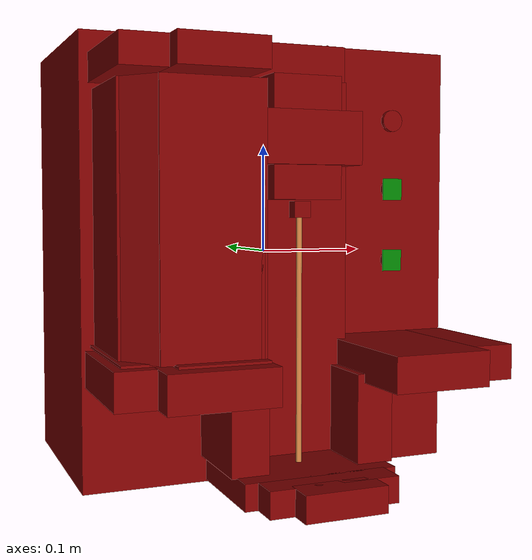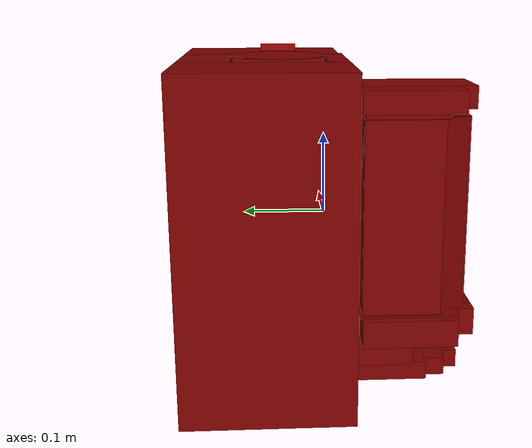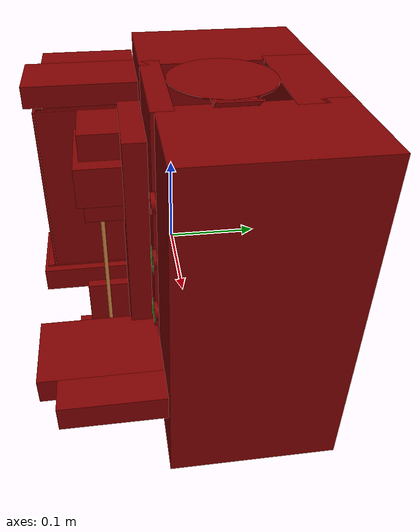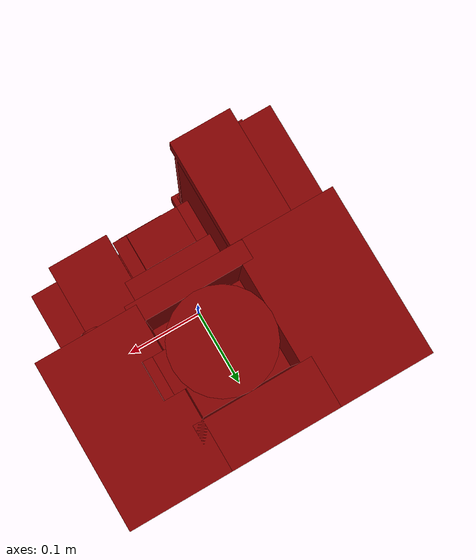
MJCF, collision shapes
<?xml version='1.0' encoding='UTF-8'?>
<mujoco model="model">
  <compiler angle="radian"/>
  <asset>
    <mesh file="visuals/Body001.obj" name="Body001_vis"/>
    <mesh file="visuals/Body001_Clear.obj" name="Body001_Clear_vis"/>
    <mesh file="visuals/Button001.obj" name="Button001_vis"/>
    <mesh file="visuals/Button002.obj" name="Button002_vis"/>
    <mesh file="visuals/Button003.obj" name="Button003_vis"/>
    <mesh file="visuals/Lid001.obj" name="Lid001_vis"/>
    <mesh file="visuals/Lid002.obj" name="Lid002_vis"/>
    <texture file="visuals/T_BC001.png" name="Body001_material" type="2d"/>
    <material name="Body001_material" rgba="1 1 1 1.0" texture="Body001_material" shininess="1" specular="1"/>
    <texture file="visuals/T_BC001.png" name="Body001_Clear_material" type="2d"/>
    <material name="Body001_Clear_material" rgba="1 1 1 0.054901957511901855" texture="Body001_Clear_material" shininess="0.5" specular="0.3103448502657381"/>
    <texture file="visuals/T_BC001.png" name="Lid001_material" type="2d"/>
    <material name="Lid001_material" rgba="1 1 1 1.0" texture="Lid001_material" shininess="1" specular="1"/>
    <texture file="visuals/T_BC001.png" name="Button001_material" type="2d"/>
    <material name="Button001_material" rgba="1 1 1 1.0" texture="Button001_material" shininess="1" specular="1"/>
    <texture file="visuals/T_BC001.png" name="Button002_material" type="2d"/>
    <material name="Button002_material" rgba="1 1 1 1.0" texture="Button002_material" shininess="1" specular="1"/>
    <texture file="visuals/T_BC001.png" name="Button003_material" type="2d"/>
    <material name="Button003_material" rgba="1 1 1 1.0" texture="Button003_material" shininess="1" specular="1"/>
    <texture file="visuals/T_BC001.png" name="Lid002_material" type="2d"/>
    <material name="Lid002_material" rgba="1 1 1 1.0" texture="Lid002_material" shininess="1" specular="1"/>
  </asset>
  <default>
    <default class="visual">
      <geom conaffinity="0" contype="0" group="1" type="mesh"/>
    </default>
    <default class="collision">
      <geom group="0" rgba="0.5 0 0 0.5"/>
    </default>
    <default class="spawn">
      <geom group="0" rgba="1 1 1 0.5" contype="0" conaffinity="0"/>
      <site group="0" rgba="1 1 1 0.5"/>
    </default>
    <default class="region">
      <geom group="1" conaffinity="0" contype="0" rgba="0 1 0 0"/>
    </default>
  </default>
  <worldbody>
    <body>
      <body name="object">
        <geom class="collision" type="box" pos="0.12107712775468826 -0.03348321467638016 -0.00964126642793417" size="0.010198851116001606 0.010198851116001606 0.00022172174067236483" quat="0.7071067094802856 0.70710688829422 0.0 0.0" name="start_button_2" rgba="0.0 0.5 0 0.5"/>
        <geom class="collision" type="box" pos="0.12107712775468826 -0.03348321467638016 0.0590573288500309" size="0.010198851116001606 0.010198851116001606 0.00022172174067236483" quat="0.7071067094802856 0.70710688829422 0.0 0.0" name="start_button_1" rgba="0.0 0.5 0 0.5"/>
        <site type="cylinder" rgba="0.8 0.5 0.25 1" size="0.002499897265806794 0.10969151556491852" pos="0.0004139021039009094 -0.08155938982963562 -0.0758737176656723" name="coffee_liquid"/>
        <site rgba="0 0 0 0" size="0.009999999776482582 0.009999999776482582" pos="-2.2351741790771484e-08 -0.08291999995708466 -0.18611593544483185" name="receptacle_place_site"/>
        <geom mesh="Body001_vis" type="mesh" solimp="0.998 0.998 0.001" solref="0.001 1" density="100" friction="0.95 0.3 0.1" class="visual" material="Body001_material"/>
        <geom class="collision" type="box" pos="0.12029457092285156 0.07537875324487686 -0.007508434820920229" size="0.060457177460193634 0.09922048449516296 0.20035886764526367" quat="1.0 0.0 0.0 0.0"/>
        <geom class="collision" type="box" pos="0.005726244300603867 -0.04299698397517204 -0.025446901097893715" size="0.053413648158311844 0.012728841975331306 0.1813308745622635" quat="1.0 0.0 0.0 0.0"/>
        <geom class="collision" type="box" pos="0.0002868058509193361 -0.08141263574361801 0.10149337351322174" size="0.0486329160630703 0.025171738117933273 0.023127645254135132" quat="1.0 0.0 0.0 0.0"/>
        <geom class="collision" type="box" pos="0.09653265029191971 -0.0949341431260109 -0.09565312415361404" size="0.045368023216724396 0.06947191059589386 0.01577002741396427" quat="1.0 0.0 0.0 0.0"/>
        <geom class="collision" type="box" pos="0.0020698849111795425 -0.076214499771595 -0.1945330798625946" size="0.06997893750667572 0.05075215920805931 0.01157949399203062" quat="1.0 0.0 0.0 0.0"/>
        <geom class="collision" type="box" pos="0.0008118483237922192 -0.08192845433950424 0.04015955701470375" size="0.0076134768314659595 0.005790594965219498 0.007272343151271343" quat="1.0 0.0 0.0 0.0"/>
        <geom class="collision" type="box" pos="-0.05584932491183281 -0.06735557317733765 -0.14354677498340607" size="0.016993002966046333 0.04189331829547882 0.03993882238864899" quat="1.0 0.0 0.0 0.0"/>
        <geom class="collision" type="box" pos="0.06146086007356644 -0.06735557317733765 -0.14354677498340607" size="0.01699301414191723 0.0418933629989624 0.03993886709213257" quat="1.0 0.0 0.0 0.0"/>
        <geom class="collision" type="box" pos="-2.947444772871677e-05 0.0806526467204094 -0.05731666460633278" size="0.16951726377010345 0.08244248479604721 0.15055064857006073" quat="4.331257628109597e-07 0.0 0.0 1.0"/>
        <geom class="collision" type="box" pos="-0.11887158453464508 0.073183074593544 -0.007508434820920229" size="0.06208404526114464 0.10141617059707642 0.20035886764526367" quat="1.0 0.0 0.0 0.0"/>
        <geom class="collision" type="box" pos="0.0008508339524269104 -0.01621164381504059 -0.007508434820920229" size="0.07093788683414459 0.011832824908196926 0.20035886764526367" quat="1.0 0.0 0.0 0.0"/>
        <geom class="collision" type="box" pos="0.0008508339524269104 0.14423009753227234 -0.007508434820920229" size="0.07093788683414459 0.03036913461983204 0.20035886764526367" quat="1.0 0.0 0.0 0.0"/>
        <geom class="collision" type="box" pos="-0.09780696034431458 -0.09920985251665115 -0.09715201705694199" size="0.04656850919127464 0.06605697423219681 0.015917321667075157" quat="1.0 0.0 0.0 0.0"/>
        <geom class="collision" type="box" pos="-0.13211330771446228 -0.08683750033378601 -0.09715201705694199" size="0.04656850919127464 0.05368461832404137 0.015917321667075157" quat="1.0 0.0 0.0 0.0"/>
        <geom class="collision" type="box" pos="0.0002868058509193361 -0.07828032225370407 0.13890305161476135" size="0.03158481419086456 0.022039422765374184 0.01568765752017498" quat="1.0 0.0 0.0 0.0"/>
        <geom class="collision" type="box" pos="0.0002868058509193361 -0.07828032225370407 0.06442836672067642" size="0.03158481419086456 0.022039422765374184 0.01568765752017498" quat="1.0 0.0 0.0 0.0"/>
        <geom class="collision" type="box" pos="0.1614852100610733 -0.08361555635929108 -0.09565312415361404" size="0.019854122772812843 0.05838443711400032 0.01577002741396427" quat="1.0 0.0 0.0 0.0"/>
        <geom class="collision" type="box" pos="0.0024135117419064045 -0.13847100734710693 -0.1945330798625946" size="0.05876042693853378 0.013698773458600044 0.01157949399203062" quat="1.0 0.0 0.0 0.0"/>
        <geom class="collision" type="box" pos="0.0024135117419064045 -0.15859687328338623 -0.1945330798625946" size="0.03685906156897545 0.013698773458600044 0.01157949399203062" quat="1.0 0.0 0.0 0.0"/>
        <body name="Body001_Clear">
          <joint axis="0.0 0.0 1.0" pos="-0.11562211066484451 -0.09324055165052414 0.03270146623253822" limited="true" name="Body001_Clear_joint" range="0.0 0.05" type="slide" damping="1" frictionloss="1" armature=".01" stiffness="0.05"/>
          <geom mesh="Body001_Clear_vis" type="mesh" solimp="0.998 0.998 0.001" solref="0.001 1" density="100" friction="0.95 0.3 0.1" class="visual" material="Body001_Clear_material"/>
          <geom class="collision" type="box" pos="-0.10201727598905563 -0.15067824721336365 0.032239384949207306" size="0.0435255691409111 0.001243031583726406 0.10988636314868927" quat="1.0 0.0 0.0 0.0"/>
          <geom class="collision" type="box" pos="-0.062052171677351 -0.09253707528114319 0.032239384949207306" size="0.00151469511911273 0.05938419699668884 0.10988636314868927" quat="1.0 0.0 0.0 0.0"/>
          <geom class="collision" type="box" pos="-0.11354825645685196 -0.03477991744875908 0.032619573175907135" size="0.05591772124171257 0.0016617337241768837 0.10988636314868927" quat="1.0 0.0 0.0 0.0"/>
          <geom class="collision" type="box" pos="-0.16855427622795105 -0.07681891322135925 0.032239384949207306" size="0.002152479952201247 0.043666038662195206 0.10988636314868927" quat="1.0 0.0 0.0 0.0"/>
          <geom class="collision" type="box" pos="-0.15490704774856567 -0.13374513387680054 0.032239384949207306" size="0.002152479952201247 0.01986122503876686 0.10988636314868927" quat="0.9437446594238281 0.0 0.0 0.33067506551742554"/>
          <geom class="collision" type="box" pos="-0.11344563961029053 -0.03477473556995392 0.032239384949207306" size="0.0549539290368557 0.0016565527766942978 0.10988636314868927" quat="1.0 0.0 0.0 0.0"/>
          <geom class="collision" type="box" pos="-0.15381473302841187 -0.08604062348604202 -0.07782431691884995" size="0.01973472535610199 0.05577203631401062 0.0011555226519703865" quat="1.0 0.0 0.0 0.0"/>
          <geom class="collision" type="box" pos="-0.0962858498096466 -0.09560143947601318 -0.07782431691884995" size="0.03779415041208267 0.06533285230398178 0.0011555226519703865" quat="1.0 0.0 0.0 0.0"/>
          <body name="Lid001">
            <joint axis="0.0 0.0 1.0" pos="-0.11642146110534668 -0.09773202985525131 0.15823259949684143" limited="true" name="Lid001_joint" range="0.0 0.05" type="slide" damping="1" frictionloss="1" armature=".01" stiffness="0.05"/>
            <geom mesh="Lid001_vis" type="mesh" solimp="0.998 0.998 0.001" solref="0.001 1" density="100" friction="0.95 0.3 0.1" class="visual" material="Lid001_material"/>
            <geom class="collision" type="box" pos="-0.15381473302841187 -0.08604062348604202 0.16047435998916626" size="0.01973472535610199 0.05577203631401062 0.012745336629450321" quat="1.0 0.0 0.0 0.0"/>
            <geom class="collision" type="box" pos="-0.0962858498096466 -0.09560143947601318 0.16047435998916626" size="0.03779415041208267 0.06533285230398178 0.012745336629450321" quat="1.0 0.0 0.0 0.0"/>
          </body>
        </body>
        <body name="Button001">
          <joint axis="0.0 1.0 0.0" pos="0.1211571916937828 -0.02952328324317932 0.12493383139371872" limited="true" name="Button001_joint" range="0.0 0.003" type="slide" damping="1" frictionloss="1" armature=".01" stiffness="0.05"/>
          <geom mesh="Button001_vis" type="mesh" solimp="0.998 0.998 0.001" solref="0.001 1" density="100" friction="0.95 0.3 0.1" class="visual" material="Button001_material"/>
          <geom class="collision" type="cylinder" pos="0.12107712775468826 -0.03130362927913666 0.12493272870779037" size="0.010198851116001606 0.0023971034679561853" quat="0.7071067094802856 0.70710688829422 0.0 0.0"/>
        </body>
        <body name="Button002">
          <joint axis="0.0 1.0 0.0" pos="0.1211571916937828 -0.02952328510582447 0.059010542929172516" limited="true" name="Button002_joint" range="0.0 0.003" type="slide" damping="1" frictionloss="1" armature=".01" stiffness="0.05"/>
          <geom mesh="Button002_vis" type="mesh" solimp="0.998 0.998 0.001" solref="0.001 1" density="100" friction="0.95 0.3 0.1" class="visual" material="Button002_material"/>
          <geom class="collision" type="cylinder" pos="0.12107712775468826 -0.030893800780177116 0.0590573288500309" size="0.010198851116001606 0.0019872740376740694" quat="0.7071067094802856 0.70710688829422 0.0 0.0"/>
        </body>
        <body name="Button003">
          <joint axis="0.0 1.0 0.0" pos="0.1211571916937828 -0.02952328510582447 -0.009814940392971039" limited="true" name="Button003_joint" range="0.0 0.003" type="slide" damping="1" frictionloss="1" armature=".01" stiffness="0.05"/>
          <geom mesh="Button003_vis" type="mesh" solimp="0.998 0.998 0.001" solref="0.001 1" density="100" friction="0.95 0.3 0.1" class="visual" material="Button003_material"/>
          <geom class="collision" type="cylinder" pos="0.12107712775468826 -0.030893800780177116 -0.00964126642793417" size="0.010198851116001606 0.0019872740376740694" quat="0.7071067094802856 0.70710688829422 0.0 0.0"/>
        </body>
        <body name="Lid002">
          <joint axis="0.0 -1.0 0.0" pos="-0.05729377642273903 0.054574884474277496 0.19490844011306763" limited="true" name="Lid002_joint" range="0.0 1.5707963267948966" type="hinge" damping="1" frictionloss="1" armature=".01" stiffness="0.05"/>
          <geom mesh="Lid002_vis" type="mesh" solimp="0.998 0.998 0.001" solref="0.001 1" density="100" friction="0.95 0.3 0.1" class="visual" material="Lid002_material"/>
          <geom class="collision" type="cylinder" pos="0.0016390916425734758 0.05432489886879921 0.1960778385400772" size="0.059431422501802444 0.000645747350063175" quat="1.0 0.0 0.0 0.0"/>
          <geom class="collision" type="box" pos="0.07712210714817047 0.0545748770236969 0.1992361694574356" size="0.008381525985896587 0.022710369899868965 0.0008296298328787088" quat="0.9490482211112976 0.0 -0.3151308298110962 0.0"/>
          <geom class="collision" type="box" pos="0.06437212228775024 0.0545748770236969 0.19572880864143372" size="0.008381525985896587 0.022710369899868965 0.0008296298328787088" quat="1.0 0.0 0.0 0.0"/>
        </body>
        <geom class="region" name="reg_main" type="box" pos="0.0 0.0 0.0" size="0.1809556484222412 0.174599289894104 0.20498394966125488"/>
      </body>
    </body>
  </worldbody>
  <actuator>
    <motor name="Body001_Clear_joint_actuator" joint="Body001_Clear_joint" gear="10"/>
    <motor name="Button001_joint_actuator" joint="Button001_joint" gear="0.5"/>
    <motor name="Button002_joint_actuator" joint="Button002_joint" gear="0.5"/>
    <motor name="Button003_joint_actuator" joint="Button003_joint" gear="0.5"/>
    <motor name="Lid002_joint_actuator" joint="Lid002_joint" gear="0.5"/>
    <motor name="Lid001_joint_actuator" joint="Lid001_joint" gear="0.5"/>
  </actuator>
</mujoco>
